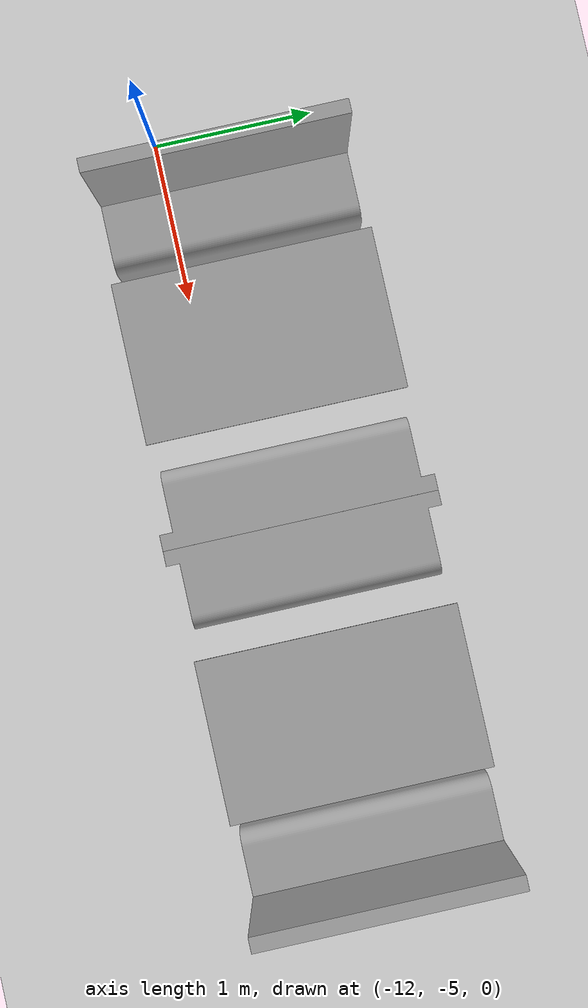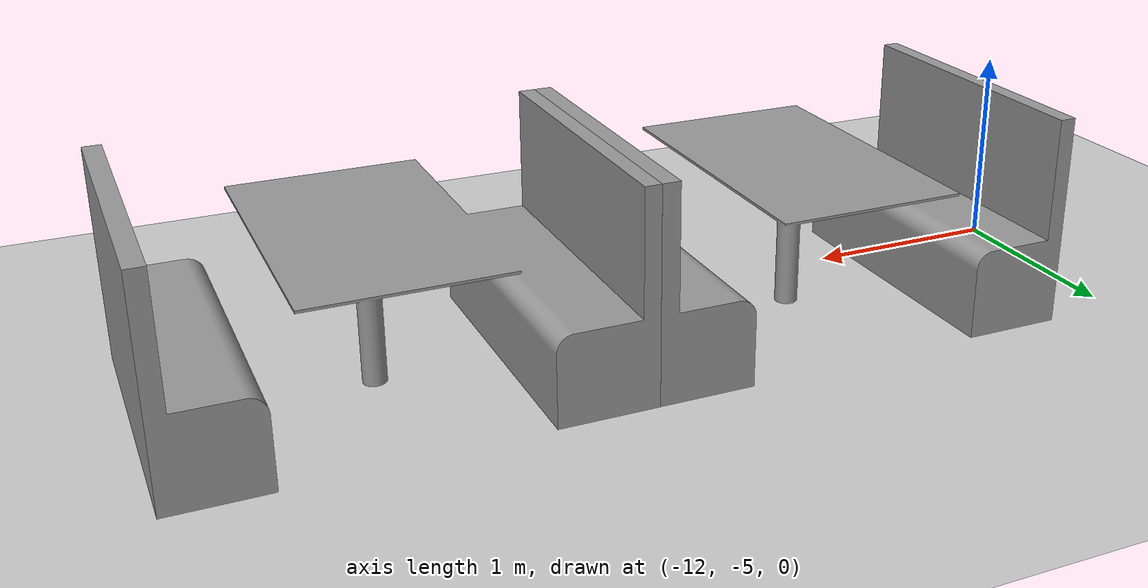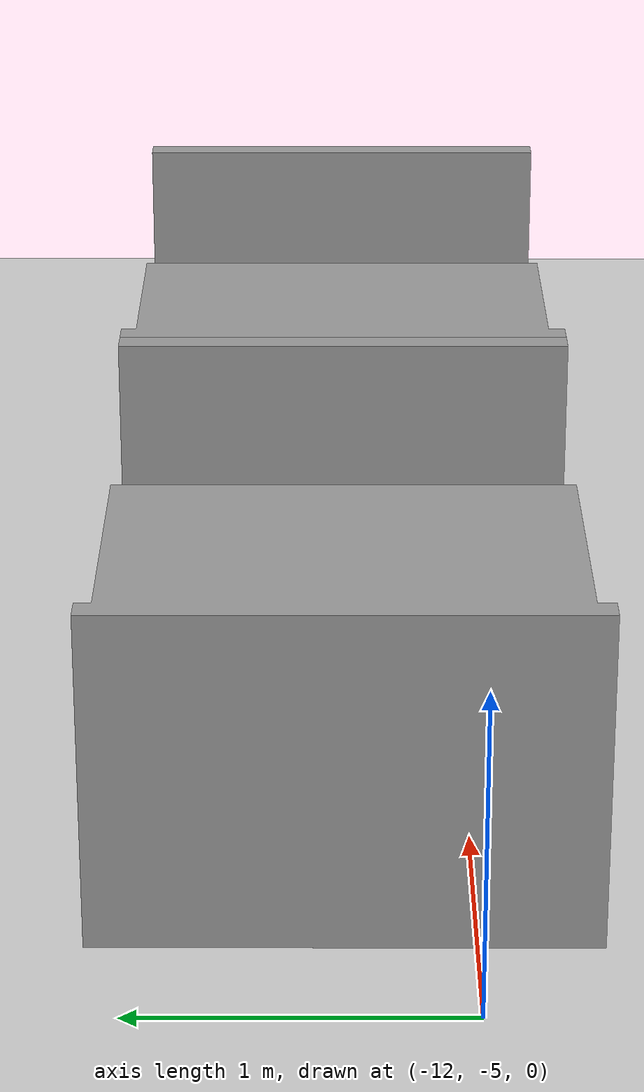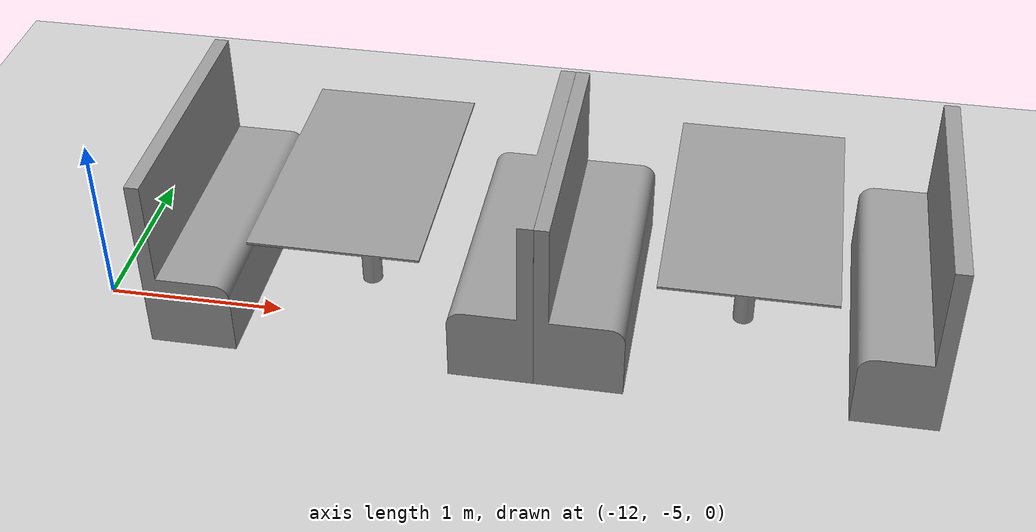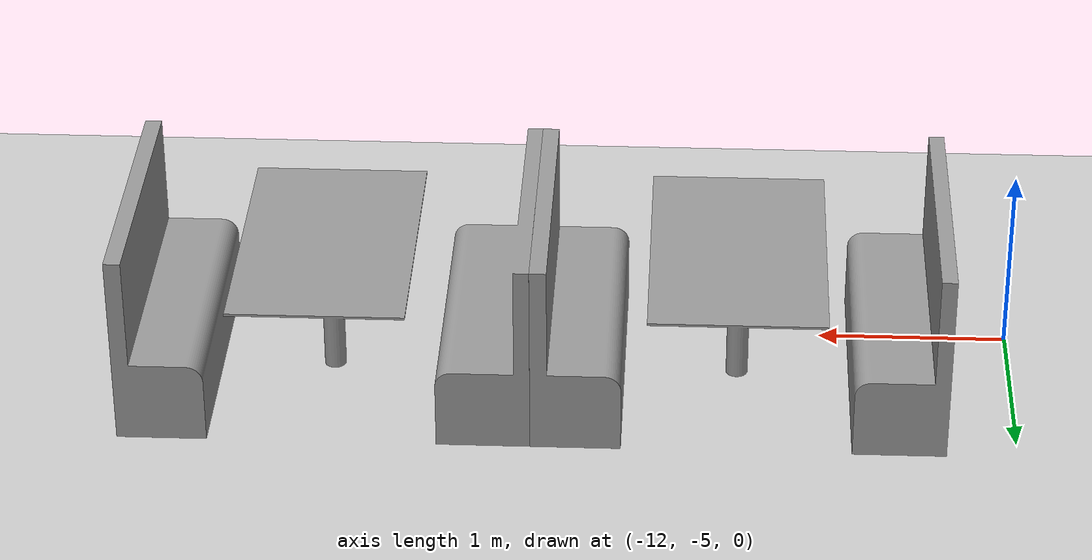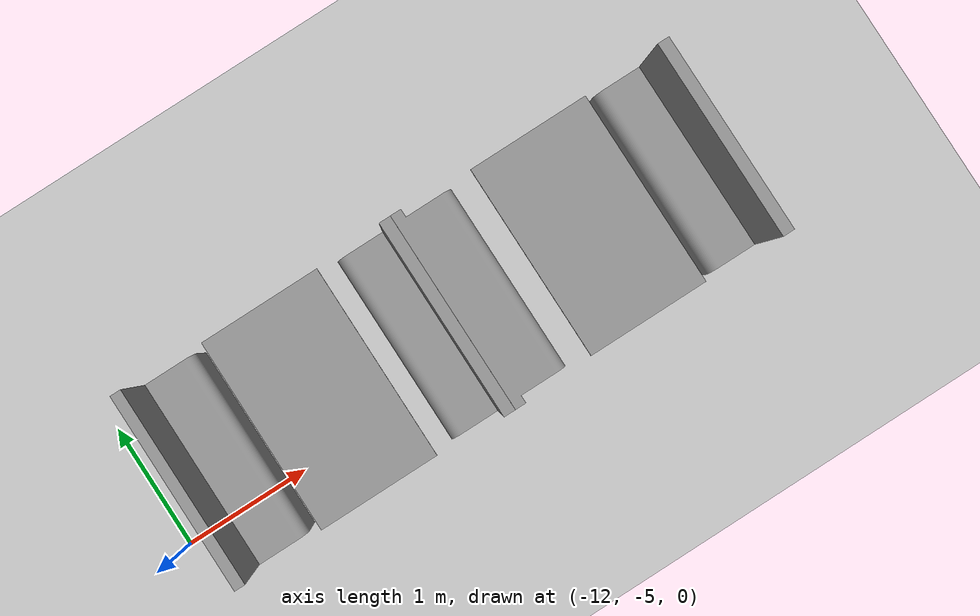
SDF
<sdf version="1.6">
 <world name="default">
  <model name="ground_plane">
   <static>1</static>
   <link name="link">
    <collision name="collision">
     <geometry><plane><normal>0 0 1</normal><size>100 100</size></plane></geometry>
     <surface><friction><ode><mu>100</mu><mu2>50</mu2></ode></friction></surface>
    </collision>
    <visual name="visual">
     <cast_shadows>0</cast_shadows>
     <geometry><plane><normal>0 0 1</normal><size>100 100</size></plane></geometry>
     <material>
      <script><uri>file://media/materials/scripts/gazebo.material</uri><name>Gazebo/Grey</name></script>
     </material>
    </visual>
   </link>
  </model>
  <model name="table_2">
   <link name="link_0">
    <inertial>
     <mass>1</mass>
     <inertia>
      <ixx>0.166667</ixx>
      <ixy>0</ixy>
      <ixz>0</ixz>
      <iyy>0.166667</iyy>
      <iyz>0</iyz>
      <izz>0.166667</izz>
     </inertia>
    </inertial>
    <visual name="visual">
     <pose>-1.9 -1.17 0 0 -0 0</pose>
     <geometry><mesh><uri>model://table/mesh/table.dae</uri><scale>0.6 0.6 0.6</scale></mesh></geometry>
     <material>
      <lighting>1</lighting>
      <script><uri>file://media/materials/scripts/gazebo.material</uri><name>Gazebo/Grey</name></script>
      <shader type="pixel"><normal_map>__default__</normal_map></shader>
      <ambient>0.3 0.3 0.3 1</ambient>
      <diffuse>0.7 0.7 0.7 1</diffuse>
      <specular>0.01 0.01 0.01 1</specular>
      <emissive>0 0 0 1</emissive>
     </material>
    </visual>
    <collision name="collision">
     <geometry><box><size>2.2 1.5 1.1</size></box></geometry>
     <surface>
      <friction>
       <ode><mu>1</mu><mu2>1</mu2><fdir1>0 0 0</fdir1><slip1>0</slip1><slip2>0</slip2></ode>
       <torsional>
        <coefficient>1</coefficient>
        <patch_radius>0</patch_radius>
        <surface_radius>0</surface_radius>
        <use_patch_radius>1</use_patch_radius>
        <ode><slip>0</slip></ode>
       </torsional>
      </friction>
      <bounce><restitution_coefficient>0</restitution_coefficient><threshold>1e+06</threshold></bounce>
      <contact>
       <collide_without_contact>0</collide_without_contact>
       <collide_without_contact_bitmask>1</collide_without_contact_bitmask>
       <collide_bitmask>1</collide_bitmask>
       <ode>
        <soft_cfm>0</soft_cfm>
        <soft_erp>0.2</soft_erp>
        <kp>1e+13</kp>
        <kd>1</kd>
        <max_vel>0.01</max_vel>
        <min_depth>0</min_depth>
       </ode>
       <bullet>
        <split_impulse>1</split_impulse>
        <split_impulse_penetration_threshold>-0.01</split_impulse_penetration_threshold>
        <soft_cfm>0</soft_cfm>
        <soft_erp>0.2</soft_erp>
        <kp>1e+13</kp>
        <kd>1</kd>
       </bullet>
      </contact>
     </surface>
    </collision>
   </link>
   <static>1</static>
   <pose>-10.556 -4.6252 0 0 -0 0</pose>
  </model>
  <model name="table_6">
   <link name="link_0">
    <inertial>
     <mass>1</mass>
     <inertia>
      <ixx>0.166667</ixx>
      <ixy>0</ixy>
      <ixz>0</ixz>
      <iyy>0.166667</iyy>
      <iyz>0</iyz>
      <izz>0.166667</izz>
     </inertia>
    </inertial>
    <visual name="visual">
     <pose>-1.9 -1.17 0 0 -0 0</pose>
     <geometry><mesh><uri>model://table/mesh/table.dae</uri><scale>0.6 0.6 0.6</scale></mesh></geometry>
     <material>
      <lighting>1</lighting>
      <script><uri>file://media/materials/scripts/gazebo.material</uri><name>Gazebo/Grey</name></script>
      <shader type="pixel"><normal_map>__default__</normal_map></shader>
      <ambient>0.3 0.3 0.3 1</ambient>
      <diffuse>0.7 0.7 0.7 1</diffuse>
      <specular>0.01 0.01 0.01 1</specular>
      <emissive>0 0 0 1</emissive>
     </material>
    </visual>
    <collision name="collision">
     <geometry><box><size>2.2 1.5 1.1</size></box></geometry>
     <surface>
      <friction>
       <ode><mu>1</mu><mu2>1</mu2><fdir1>0 0 0</fdir1><slip1>0</slip1><slip2>0</slip2></ode>
       <torsional>
        <coefficient>1</coefficient>
        <patch_radius>0</patch_radius>
        <surface_radius>0</surface_radius>
        <use_patch_radius>1</use_patch_radius>
        <ode><slip>0</slip></ode>
       </torsional>
      </friction>
      <bounce><restitution_coefficient>0</restitution_coefficient><threshold>1e+06</threshold></bounce>
      <contact>
       <collide_without_contact>0</collide_without_contact>
       <collide_without_contact_bitmask>1</collide_without_contact_bitmask>
       <collide_bitmask>1</collide_bitmask>
       <ode>
        <soft_cfm>0</soft_cfm>
        <soft_erp>0.2</soft_erp>
        <kp>1e+13</kp>
        <kd>1</kd>
        <max_vel>0.01</max_vel>
        <min_depth>0</min_depth>
       </ode>
       <bullet>
        <split_impulse>1</split_impulse>
        <split_impulse_penetration_threshold>-0.01</split_impulse_penetration_threshold>
        <soft_cfm>0</soft_cfm>
        <soft_erp>0.2</soft_erp>
        <kp>1e+13</kp>
        <kd>1</kd>
       </bullet>
      </contact>
     </surface>
    </collision>
   </link>
   <static>1</static>
   <pose>-8.4127 -4.62519 0 0 -0 0</pose>
  </model>
 </world>
</sdf>
